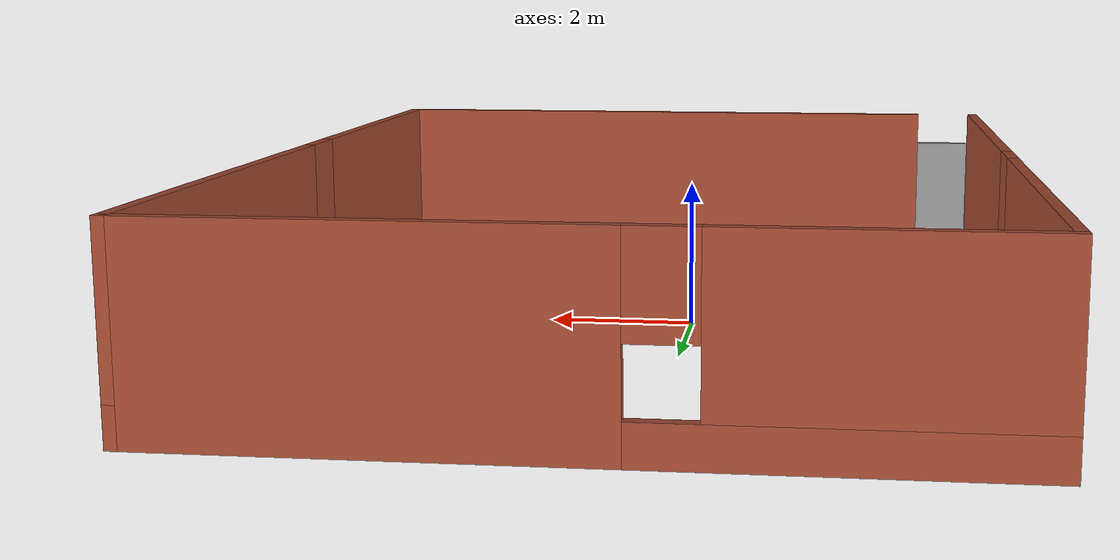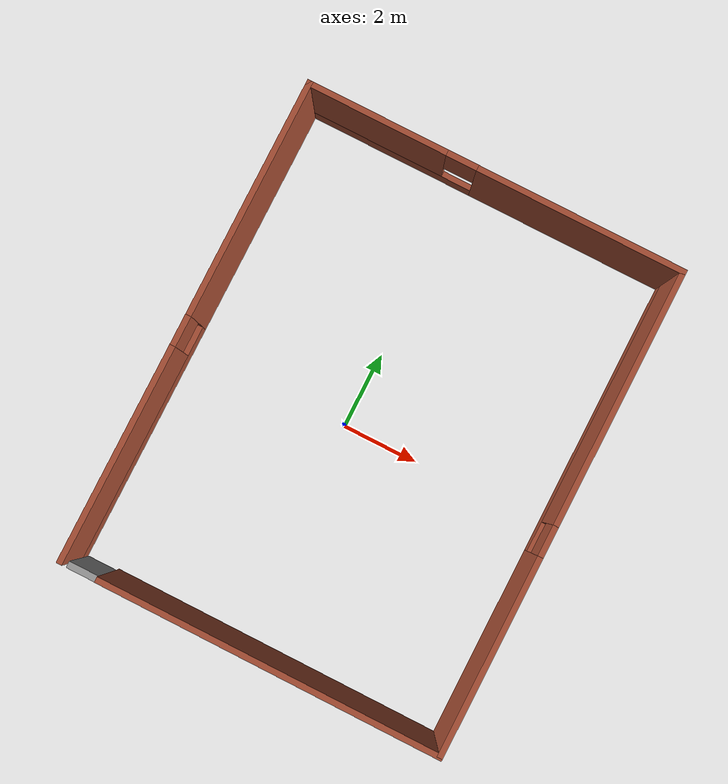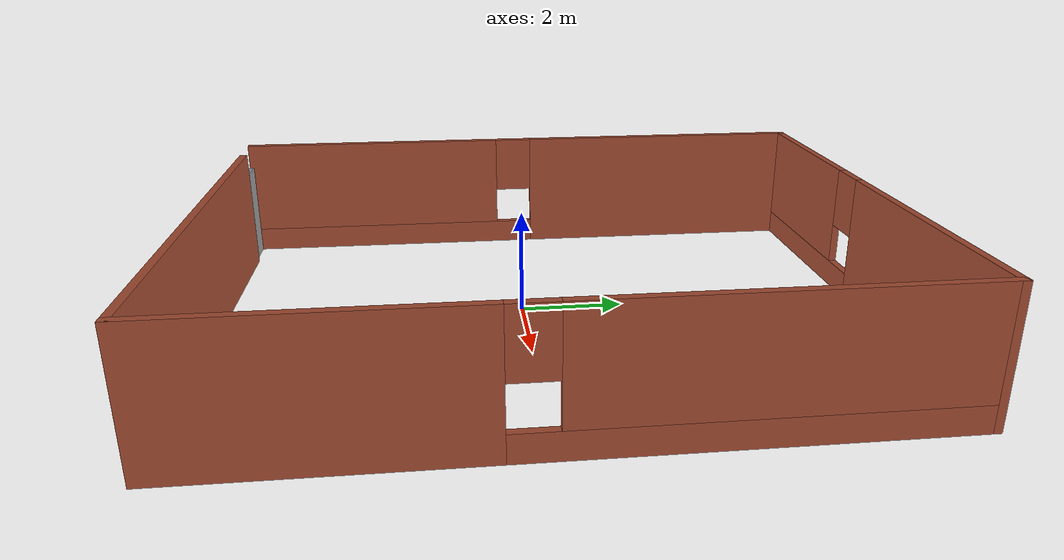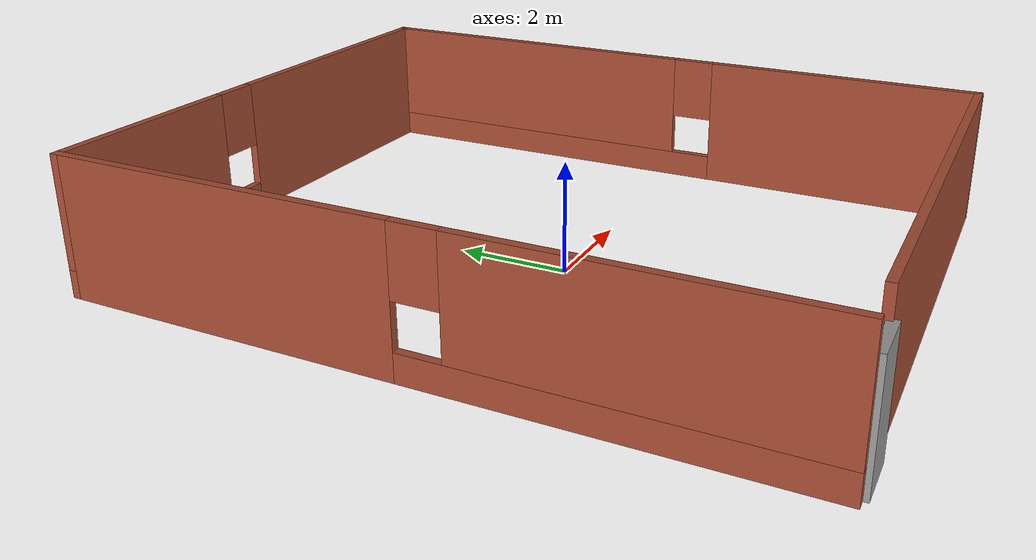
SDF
<?xml version='1.0'?>
<sdf version='1.7'>
  <model name='first_building'>
    <pose>0.582935 0.444911 0 0 -0 0</pose>
    <link name='Door_0'>
      <collision name='Door_0_Collision'>
        <geometry>
          <box>
            <size>0.9 0.17 2</size>
          </box>
        </geometry>
        <pose>0 0 1 0 -0 0</pose>
      </collision>
      <visual name='Door_0_Visual'>
        <pose>0 0 1 0 -0 0</pose>
        <geometry>
          <box>
            <size>0.9 0.17 2</size>
          </box>
        </geometry>
        <material>
          <script>
            <uri>file://media/materials/scripts/gazebo.material</uri>
            <name>Gazebo/Grey</name>
          </script>
        </material>
      </visual>
      <pose>-4.38127 -6.36871 0 0 -0 0</pose>
    </link>
    <link name='Wall_11'>
      <collision name='Wall_11_Collision'>
        <geometry>
          <box>
            <size>9 0.15 2.5</size>
          </box>
        </geometry>
        <pose>0 0 1.25 0 -0 0</pose>
      </collision>
      <visual name='Wall_11_Visual'>
        <pose>0 0 1.25 0 -0 0</pose>
        <geometry>
          <box>
            <size>9 0.15 2.5</size>
          </box>
        </geometry>
        <material>
          <script>
            <uri>file://media/materials/scripts/gazebo.material</uri>
            <name>Gazebo/Bricks</name>
          </script>
          <ambient>1 1 1 1</ambient>
        </material>
        <meta>
          <layer>0</layer>
        </meta>
      </visual>
      <pose>0.5 -6.3 0 0 -0 0</pose>
    </link>
    <link name='Wall_12'>
      <pose>4.925 0 0 0 -0 1.5708</pose>
      <visual name='Wall_12_Visual_0'>
        <pose>-3.77234 0 1.25 0 -0 0</pose>
        <geometry>
          <box>
            <size>5.20532 0.15 2.5</size>
          </box>
        </geometry>
        <material>
          <script>
            <uri>file://media/materials/scripts/gazebo.material</uri>
            <name>Gazebo/Bricks</name>
          </script>
          <ambient>1 1 1 1</ambient>
        </material>
        <meta>
          <layer>0</layer>
        </meta>
      </visual>
      <collision name='Wall_12_Collision_0'>
        <geometry>
          <box>
            <size>5.20532 0.15 2.5</size>
          </box>
        </geometry>
        <pose>-3.77234 0 1.25 0 -0 0</pose>
      </collision>
      <visual name='Wall_12_Visual_1'>
        <pose>2.60266 0 0.25 0 -0 0</pose>
        <geometry>
          <box>
            <size>7.54468 0.15 0.5</size>
          </box>
        </geometry>
        <material>
          <script>
            <uri>file://media/materials/scripts/gazebo.material</uri>
            <name>Gazebo/Bricks</name>
          </script>
          <ambient>1 1 1 1</ambient>
        </material>
        <meta>
          <layer>0</layer>
        </meta>
      </visual>
      <collision name='Wall_12_Collision_1'>
        <geometry>
          <box>
            <size>7.54468 0.15 0.5</size>
          </box>
        </geometry>
        <pose>2.60266 0 0.25 0 -0 0</pose>
      </collision>
      <visual name='Wall_12_Visual_2'>
        <pose>3.00266 0 1.5 0 -0 0</pose>
        <geometry>
          <box>
            <size>6.74468 0.15 2</size>
          </box>
        </geometry>
        <material>
          <script>
            <uri>file://media/materials/scripts/gazebo.material</uri>
            <name>Gazebo/Bricks</name>
          </script>
          <ambient>1 1 1 1</ambient>
        </material>
        <meta>
          <layer>0</layer>
        </meta>
      </visual>
      <collision name='Wall_12_Collision_2'>
        <geometry>
          <box>
            <size>6.74468 0.15 2</size>
          </box>
        </geometry>
        <pose>3.00266 0 1.5 0 -0 0</pose>
      </collision>
      <visual name='Wall_12_Visual_3'>
        <pose>-0.769679 0 1.9 0 -0 0</pose>
        <geometry>
          <box>
            <size>0.8 0.15 1.2</size>
          </box>
        </geometry>
        <material>
          <script>
            <uri>file://media/materials/scripts/gazebo.material</uri>
            <name>Gazebo/Bricks</name>
          </script>
          <ambient>1 1 1 1</ambient>
        </material>
        <meta>
          <layer>0</layer>
        </meta>
      </visual>
      <collision name='Wall_12_Collision_3'>
        <geometry>
          <box>
            <size>0.8 0.15 1.2</size>
          </box>
        </geometry>
        <pose>-0.769679 0 1.9 0 -0 0</pose>
      </collision>
    </link>
    <link name='Wall_14'>
      <pose>0 6.3 0 0 -0 3.14159</pose>
      <visual name='Wall_14_Visual_0'>
        <pose>-2.26291 0 1.25 0 -0 0</pose>
        <geometry>
          <box>
            <size>5.47418 0.15 2.5</size>
          </box>
        </geometry>
        <material>
          <script>
            <uri>file://media/materials/scripts/gazebo.material</uri>
            <name>Gazebo/Bricks</name>
          </script>
          <ambient>1 1 1 1</ambient>
        </material>
        <meta>
          <layer>0</layer>
        </meta>
      </visual>
      <collision name='Wall_14_Collision_0'>
        <geometry>
          <box>
            <size>5.47418 0.15 2.5</size>
          </box>
        </geometry>
        <pose>-2.26291 0 1.25 0 -0 0</pose>
      </collision>
      <visual name='Wall_14_Visual_1'>
        <pose>2.73709 0 0.25 0 -0 0</pose>
        <geometry>
          <box>
            <size>4.52582 0.15 0.5</size>
          </box>
        </geometry>
        <material>
          <script>
            <uri>file://media/materials/scripts/gazebo.material</uri>
            <name>Gazebo/Bricks</name>
          </script>
          <ambient>1 1 1 1</ambient>
        </material>
        <meta>
          <layer>0</layer>
        </meta>
      </visual>
      <collision name='Wall_14_Collision_1'>
        <geometry>
          <box>
            <size>4.52582 0.15 0.5</size>
          </box>
        </geometry>
        <pose>2.73709 0 0.25 0 -0 0</pose>
      </collision>
      <visual name='Wall_14_Visual_2'>
        <pose>3.13709 0 1.5 0 -0 0</pose>
        <geometry>
          <box>
            <size>3.72582 0.15 2</size>
          </box>
        </geometry>
        <material>
          <script>
            <uri>file://media/materials/scripts/gazebo.material</uri>
            <name>Gazebo/Bricks</name>
          </script>
          <ambient>1 1 1 1</ambient>
        </material>
        <meta>
          <layer>0</layer>
        </meta>
      </visual>
      <collision name='Wall_14_Collision_2'>
        <geometry>
          <box>
            <size>3.72582 0.15 2</size>
          </box>
        </geometry>
        <pose>3.13709 0 1.5 0 -0 0</pose>
      </collision>
      <visual name='Wall_14_Visual_3'>
        <pose>0.874181 0 1.9 0 -0 0</pose>
        <geometry>
          <box>
            <size>0.8 0.15 1.2</size>
          </box>
        </geometry>
        <material>
          <script>
            <uri>file://media/materials/scripts/gazebo.material</uri>
            <name>Gazebo/Bricks</name>
          </script>
          <ambient>1 1 1 1</ambient>
        </material>
        <meta>
          <layer>0</layer>
        </meta>
      </visual>
      <collision name='Wall_14_Collision_3'>
        <geometry>
          <box>
            <size>0.8 0.15 1.2</size>
          </box>
        </geometry>
        <pose>0.874181 0 1.9 0 -0 0</pose>
      </collision>
    </link>
    <link name='Wall_15'>
      <pose>-4.925 0 0 0 -0 -1.5708</pose>
      <visual name='Wall_15_Visual_0'>
        <pose>-3.24877 0 1.25 0 -0 0</pose>
        <geometry>
          <box>
            <size>6.25246 0.15 2.5</size>
          </box>
        </geometry>
        <material>
          <script>
            <uri>file://media/materials/scripts/gazebo.material</uri>
            <name>Gazebo/Bricks</name>
          </script>
          <ambient>1 1 1 1</ambient>
        </material>
        <meta>
          <layer>0</layer>
        </meta>
      </visual>
      <collision name='Wall_15_Collision_0'>
        <geometry>
          <box>
            <size>6.25246 0.15 2.5</size>
          </box>
        </geometry>
        <pose>-3.24877 0 1.25 0 -0 0</pose>
      </collision>
      <visual name='Wall_15_Visual_1'>
        <pose>3.12623 0 0.25 0 -0 0</pose>
        <geometry>
          <box>
            <size>6.49754 0.15 0.5</size>
          </box>
        </geometry>
        <material>
          <script>
            <uri>file://media/materials/scripts/gazebo.material</uri>
            <name>Gazebo/Bricks</name>
          </script>
          <ambient>1 1 1 1</ambient>
        </material>
        <meta>
          <layer>0</layer>
        </meta>
      </visual>
      <collision name='Wall_15_Collision_1'>
        <geometry>
          <box>
            <size>6.49754 0.15 0.5</size>
          </box>
        </geometry>
        <pose>3.12623 0 0.25 0 -0 0</pose>
      </collision>
      <visual name='Wall_15_Visual_2'>
        <pose>3.52623 0 1.5 0 -0 0</pose>
        <geometry>
          <box>
            <size>5.69754 0.15 2</size>
          </box>
        </geometry>
        <material>
          <script>
            <uri>file://media/materials/scripts/gazebo.material</uri>
            <name>Gazebo/Bricks</name>
          </script>
          <ambient>1 1 1 1</ambient>
        </material>
        <meta>
          <layer>0</layer>
        </meta>
      </visual>
      <collision name='Wall_15_Collision_2'>
        <geometry>
          <box>
            <size>5.69754 0.15 2</size>
          </box>
        </geometry>
        <pose>3.52623 0 1.5 0 -0 0</pose>
      </collision>
      <visual name='Wall_15_Visual_3'>
        <pose>0.277456 0 1.9 0 -0 0</pose>
        <geometry>
          <box>
            <size>0.8 0.15 1.2</size>
          </box>
        </geometry>
        <material>
          <script>
            <uri>file://media/materials/scripts/gazebo.material</uri>
            <name>Gazebo/Bricks</name>
          </script>
          <ambient>1 1 1 1</ambient>
        </material>
        <meta>
          <layer>0</layer>
        </meta>
      </visual>
      <collision name='Wall_15_Collision_3'>
        <geometry>
          <box>
            <size>0.8 0.15 1.2</size>
          </box>
        </geometry>
        <pose>0.277456 0 1.9 0 -0 0</pose>
      </collision>
    </link>
    <static>1</static>
  </model>
</sdf>
